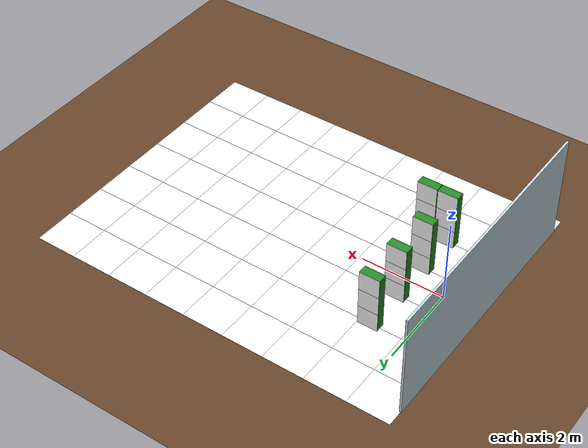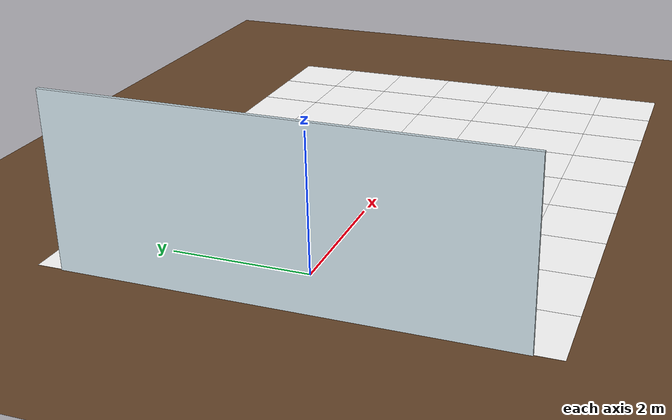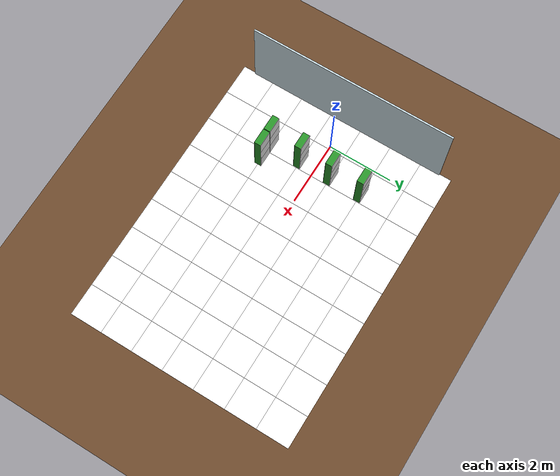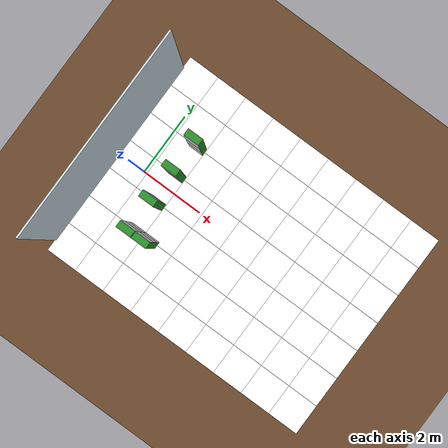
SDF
<sdf version="1.6">
 <world name="greenhouse_world">
  <model name="soil_ground">
   <static>true</static>
   <link name="link">
    <collision name="collision">
     <geometry><plane><normal>0 0 1</normal><size>100 100</size></plane></geometry>
     <surface><friction><ode><mu>100</mu><mu2>50</mu2></ode></friction></surface>
    </collision>
    <visual name="base">
     <cast_shadows>false</cast_shadows>
     <geometry><plane><normal>0 0 1</normal><size>100 100</size></plane></geometry>
     <material>
      <ambient>0.30 0.20 0.12 1</ambient>
      <diffuse>0.40 0.27 0.16 1</diffuse>
      <specular>0.0 0.0 0.0 1</specular>
     </material>
    </visual>
    <visual name="soil_tile_0_0">
     <cast_shadows>false</cast_shadows>
     <pose>-0.410 -3.000 0.003 0 0 0</pose>
     <geometry><box><size>1.0 1.0 0.002</size></box></geometry>
     <material>
      <diffuse>1 1 1 1</diffuse>
      <specular>0 0 0 1</specular>
      <pbr>
       <metal>
        <albedo_map>../media/materials/textures/soil_img.jpg</albedo_map>
        <metalness>0.0</metalness>
        <roughness>1.0</roughness>
       </metal>
      </pbr>
     </material>
    </visual>
    <visual name="soil_tile_0_1">
     <cast_shadows>false</cast_shadows>
     <pose>-0.410 -2.000 0.003 0 0 0</pose>
     <geometry><box><size>1.0 1.0 0.002</size></box></geometry>
     <material>
      <diffuse>1 1 1 1</diffuse>
      <specular>0 0 0 1</specular>
      <pbr>
       <metal>
        <albedo_map>../media/materials/textures/soil_img.jpg</albedo_map>
        <metalness>0.0</metalness>
        <roughness>1.0</roughness>
       </metal>
      </pbr>
     </material>
    </visual>
    <visual name="soil_tile_0_2">
     <cast_shadows>false</cast_shadows>
     <pose>-0.410 -1.000 0.003 0 0 0</pose>
     <geometry><box><size>1.0 1.0 0.002</size></box></geometry>
     <material>
      <diffuse>1 1 1 1</diffuse>
      <specular>0 0 0 1</specular>
      <pbr>
       <metal>
        <albedo_map>../media/materials/textures/soil_img.jpg</albedo_map>
        <metalness>0.0</metalness>
        <roughness>1.0</roughness>
       </metal>
      </pbr>
     </material>
    </visual>
    <visual name="soil_tile_0_3">
     <cast_shadows>false</cast_shadows>
     <pose>-0.410 0.000 0.003 0 0 0</pose>
     <geometry><box><size>1.0 1.0 0.002</size></box></geometry>
     <material>
      <diffuse>1 1 1 1</diffuse>
      <specular>0 0 0 1</specular>
      <pbr>
       <metal>
        <albedo_map>../media/materials/textures/soil_img.jpg</albedo_map>
        <metalness>0.0</metalness>
        <roughness>1.0</roughness>
       </metal>
      </pbr>
     </material>
    </visual>
    <visual name="soil_tile_0_4">
     <cast_shadows>false</cast_shadows>
     <pose>-0.410 1.000 0.003 0 0 0</pose>
     <geometry><box><size>1.0 1.0 0.002</size></box></geometry>
     <material>
      <diffuse>1 1 1 1</diffuse>
      <specular>0 0 0 1</specular>
      <pbr>
       <metal>
        <albedo_map>../media/materials/textures/soil_img.jpg</albedo_map>
        <metalness>0.0</metalness>
        <roughness>1.0</roughness>
       </metal>
      </pbr>
     </material>
    </visual>
    <visual name="soil_tile_0_5">
     <cast_shadows>false</cast_shadows>
     <pose>-0.410 2.000 0.003 0 0 0</pose>
     <geometry><box><size>1.0 1.0 0.002</size></box></geometry>
     <material>
      <diffuse>1 1 1 1</diffuse>
      <specular>0 0 0 1</specular>
      <pbr>
       <metal>
        <albedo_map>../media/materials/textures/soil_img.jpg</albedo_map>
        <metalness>0.0</metalness>
        <roughness>1.0</roughness>
       </metal>
      </pbr>
     </material>
    </visual>
    <visual name="soil_tile_0_6">
     <cast_shadows>false</cast_shadows>
     <pose>-0.410 3.000 0.003 0 0 0</pose>
     <geometry><box><size>1.0 1.0 0.002</size></box></geometry>
     <material>
      <diffuse>1 1 1 1</diffuse>
      <specular>0 0 0 1</specular>
      <pbr>
       <metal>
        <albedo_map>../media/materials/textures/soil_img.jpg</albedo_map>
        <metalness>0.0</metalness>
        <roughness>1.0</roughness>
       </metal>
      </pbr>
     </material>
    </visual>
    <visual name="soil_tile_1_0">
     <cast_shadows>false</cast_shadows>
     <pose>0.590 -3.000 0.003 0 0 0</pose>
     <geometry><box><size>1.0 1.0 0.002</size></box></geometry>
     <material>
      <diffuse>1 1 1 1</diffuse>
      <specular>0 0 0 1</specular>
      <pbr>
       <metal>
        <albedo_map>../media/materials/textures/soil_img.jpg</albedo_map>
        <metalness>0.0</metalness>
        <roughness>1.0</roughness>
       </metal>
      </pbr>
     </material>
    </visual>
    <visual name="soil_tile_1_1">
     <cast_shadows>false</cast_shadows>
     <pose>0.590 -2.000 0.003 0 0 0</pose>
     <geometry><box><size>1.0 1.0 0.002</size></box></geometry>
     <material>
      <diffuse>1 1 1 1</diffuse>
      <specular>0 0 0 1</specular>
      <pbr>
       <metal>
        <albedo_map>../media/materials/textures/soil_img.jpg</albedo_map>
        <metalness>0.0</metalness>
        <roughness>1.0</roughness>
       </metal>
      </pbr>
     </material>
    </visual>
    <visual name="soil_tile_1_2">
     <cast_shadows>false</cast_shadows>
     <pose>0.590 -1.000 0.003 0 0 0</pose>
     <geometry><box><size>1.0 1.0 0.002</size></box></geometry>
     <material>
      <diffuse>1 1 1 1</diffuse>
      <specular>0 0 0 1</specular>
      <pbr>
       <metal>
        <albedo_map>../media/materials/textures/soil_img.jpg</albedo_map>
        <metalness>0.0</metalness>
        <roughness>1.0</roughness>
       </metal>
      </pbr>
     </material>
    </visual>
    <visual name="soil_tile_1_3">
     <cast_shadows>false</cast_shadows>
     <pose>0.590 0.000 0.003 0 0 0</pose>
     <geometry><box><size>1.0 1.0 0.002</size></box></geometry>
     <material>
      <diffuse>1 1 1 1</diffuse>
      <specular>0 0 0 1</specular>
      <pbr>
       <metal>
        <albedo_map>../media/materials/textures/soil_img.jpg</albedo_map>
        <metalness>0.0</metalness>
        <roughness>1.0</roughness>
       </metal>
      </pbr>
     </material>
    </visual>
    <visual name="soil_tile_1_4">
     <cast_shadows>false</cast_shadows>
     <pose>0.590 1.000 0.003 0 0 0</pose>
     <geometry><box><size>1.0 1.0 0.002</size></box></geometry>
     <material>
      <diffuse>1 1 1 1</diffuse>
      <specular>0 0 0 1</specular>
      <pbr>
       <metal>
        <albedo_map>../media/materials/textures/soil_img.jpg</albedo_map>
        <metalness>0.0</metalness>
        <roughness>1.0</roughness>
       </metal>
      </pbr>
     </material>
    </visual>
    <visual name="soil_tile_1_5">
     <cast_shadows>false</cast_shadows>
     <pose>0.590 2.000 0.003 0 0 0</pose>
     <geometry><box><size>1.0 1.0 0.002</size></box></geometry>
     <material>
      <diffuse>1 1 1 1</diffuse>
      <specular>0 0 0 1</specular>
      <pbr>
       <metal>
        <albedo_map>../media/materials/textures/soil_img.jpg</albedo_map>
        <metalness>0.0</metalness>
        <roughness>1.0</roughness>
       </metal>
      </pbr>
     </material>
    </visual>
    <visual name="soil_tile_1_6">
     <cast_shadows>false</cast_shadows>
     <pose>0.590 3.000 0.003 0 0 0</pose>
     <geometry><box><size>1.0 1.0 0.002</size></box></geometry>
     <material>
      <diffuse>1 1 1 1</diffuse>
      <specular>0 0 0 1</specular>
      <pbr>
       <metal>
        <albedo_map>../media/materials/textures/soil_img.jpg</albedo_map>
        <metalness>0.0</metalness>
        <roughness>1.0</roughness>
       </metal>
      </pbr>
     </material>
    </visual>
    <visual name="soil_tile_2_0">
     <cast_shadows>false</cast_shadows>
     <pose>1.590 -3.000 0.003 0 0 0</pose>
     <geometry><box><size>1.0 1.0 0.002</size></box></geometry>
     <material>
      <diffuse>1 1 1 1</diffuse>
      <specular>0 0 0 1</specular>
      <pbr>
       <metal>
        <albedo_map>../media/materials/textures/soil_img.jpg</albedo_map>
        <metalness>0.0</metalness>
        <roughness>1.0</roughness>
       </metal>
      </pbr>
     </material>
    </visual>
    <visual name="soil_tile_2_1">
     <cast_shadows>false</cast_shadows>
     <pose>1.590 -2.000 0.003 0 0 0</pose>
     <geometry><box><size>1.0 1.0 0.002</size></box></geometry>
     <material>
      <diffuse>1 1 1 1</diffuse>
      <specular>0 0 0 1</specular>
      <pbr>
       <metal>
        <albedo_map>../media/materials/textures/soil_img.jpg</albedo_map>
        <metalness>0.0</metalness>
        <roughness>1.0</roughness>
       </metal>
      </pbr>
     </material>
    </visual>
    <visual name="soil_tile_2_2">
     <cast_shadows>false</cast_shadows>
     <pose>1.590 -1.000 0.003 0 0 0</pose>
     <geometry><box><size>1.0 1.0 0.002</size></box></geometry>
     <material>
      <diffuse>1 1 1 1</diffuse>
      <specular>0 0 0 1</specular>
      <pbr>
       <metal>
        <albedo_map>../media/materials/textures/soil_img.jpg</albedo_map>
        <metalness>0.0</metalness>
        <roughness>1.0</roughness>
       </metal>
      </pbr>
     </material>
    </visual>
    <visual name="soil_tile_2_3">
     <cast_shadows>false</cast_shadows>
     <pose>1.590 0.000 0.003 0 0 0</pose>
     <geometry><box><size>1.0 1.0 0.002</size></box></geometry>
     <material>
      <diffuse>1 1 1 1</diffuse>
      <specular>0 0 0 1</specular>
      <pbr>
       <metal>
        <albedo_map>../media/materials/textures/soil_img.jpg</albedo_map>
        <metalness>0.0</metalness>
        <roughness>1.0</roughness>
       </metal>
      </pbr>
     </material>
    </visual>
    <visual name="soil_tile_2_4">
     <cast_shadows>false</cast_shadows>
     <pose>1.590 1.000 0.003 0 0 0</pose>
     <geometry><box><size>1.0 1.0 0.002</size></box></geometry>
     <material>
      <diffuse>1 1 1 1</diffuse>
      <specular>0 0 0 1</specular>
      <pbr>
       <metal>
        <albedo_map>../media/materials/textures/soil_img.jpg</albedo_map>
        <metalness>0.0</metalness>
        <roughness>1.0</roughness>
       </metal>
      </pbr>
     </material>
    </visual>
    <visual name="soil_tile_2_5">
     <cast_shadows>false</cast_shadows>
     <pose>1.590 2.000 0.003 0 0 0</pose>
     <geometry><box><size>1.0 1.0 0.002</size></box></geometry>
     <material>
      <diffuse>1 1 1 1</diffuse>
      <specular>0 0 0 1</specular>
      <pbr>
       <metal>
        <albedo_map>../media/materials/textures/soil_img.jpg</albedo_map>
        <metalness>0.0</metalness>
        <roughness>1.0</roughness>
       </metal>
      </pbr>
     </material>
    </visual>
    <visual name="soil_tile_2_6">
     <cast_shadows>false</cast_shadows>
     <pose>1.590 3.000 0.003 0 0 0</pose>
     <geometry><box><size>1.0 1.0 0.002</size></box></geometry>
     <material>
      <diffuse>1 1 1 1</diffuse>
      <specular>0 0 0 1</specular>
      <pbr>
       <metal>
        <albedo_map>../media/materials/textures/soil_img.jpg</albedo_map>
        <metalness>0.0</metalness>
        <roughness>1.0</roughness>
       </metal>
      </pbr>
     </material>
    </visual>
    <visual name="soil_tile_3_0">
     <cast_shadows>false</cast_shadows>
     <pose>2.590 -3.000 0.003 0 0 0</pose>
     <geometry><box><size>1.0 1.0 0.002</size></box></geometry>
     <material>
      <diffuse>1 1 1 1</diffuse>
      <specular>0 0 0 1</specular>
      <pbr>
       <metal>
        <albedo_map>../media/materials/textures/soil_img.jpg</albedo_map>
        <metalness>0.0</metalness>
        <roughness>1.0</roughness>
       </metal>
      </pbr>
     </material>
    </visual>
    <visual name="soil_tile_3_1">
     <cast_shadows>false</cast_shadows>
     <pose>2.590 -2.000 0.003 0 0 0</pose>
     <geometry><box><size>1.0 1.0 0.002</size></box></geometry>
     <material>
      <diffuse>1 1 1 1</diffuse>
      <specular>0 0 0 1</specular>
      <pbr>
       <metal>
        <albedo_map>../media/materials/textures/soil_img.jpg</albedo_map>
        <metalness>0.0</metalness>
        <roughness>1.0</roughness>
       </metal>
      </pbr>
     </material>
    </visual>
    <visual name="soil_tile_3_2">
     <cast_shadows>false</cast_shadows>
     <pose>2.590 -1.000 0.003 0 0 0</pose>
     <geometry><box><size>1.0 1.0 0.002</size></box></geometry>
     <material>
      <diffuse>1 1 1 1</diffuse>
      <specular>0 0 0 1</specular>
      <pbr>
       <metal>
        <albedo_map>../media/materials/textures/soil_img.jpg</albedo_map>
        <metalness>0.0</metalness>
        <roughness>1.0</roughness>
       </metal>
      </pbr>
     </material>
    </visual>
    <visual name="soil_tile_3_3">
     <cast_shadows>false</cast_shadows>
     <pose>2.590 0.000 0.003 0 0 0</pose>
     <geometry><box><size>1.0 1.0 0.002</size></box></geometry>
     <material>
      <diffuse>1 1 1 1</diffuse>
      <specular>0 0 0 1</specular>
      <pbr>
       <metal>
        <albedo_map>../media/materials/textures/soil_img.jpg</albedo_map>
        <metalness>0.0</metalness>
        <roughness>1.0</roughness>
       </metal>
      </pbr>
     </material>
    </visual>
    <visual name="soil_tile_3_4">
     <cast_shadows>false</cast_shadows>
     <pose>2.590 1.000 0.003 0 0 0</pose>
     <geometry><box><size>1.0 1.0 0.002</size></box></geometry>
     <material>
      <diffuse>1 1 1 1</diffuse>
      <specular>0 0 0 1</specular>
      <pbr>
       <metal>
        <albedo_map>../media/materials/textures/soil_img.jpg</albedo_map>
        <metalness>0.0</metalness>
        <roughness>1.0</roughness>
       </metal>
      </pbr>
     </material>
    </visual>
    <visual name="soil_tile_3_5">
     <cast_shadows>false</cast_shadows>
     <pose>2.590 2.000 0.003 0 0 0</pose>
     <geometry><box><size>1.0 1.0 0.002</size></box></geometry>
     <material>
      <diffuse>1 1 1 1</diffuse>
      <specular>0 0 0 1</specular>
      <pbr>
       <metal>
        <albedo_map>../media/materials/textures/soil_img.jpg</albedo_map>
        <metalness>0.0</metalness>
        <roughness>1.0</roughness>
       </metal>
      </pbr>
     </material>
    </visual>
    <visual name="soil_tile_3_6">
     <cast_shadows>false</cast_shadows>
     <pose>2.590 3.000 0.003 0 0 0</pose>
     <geometry><box><size>1.0 1.0 0.002</size></box></geometry>
     <material>
      <diffuse>1 1 1 1</diffuse>
      <specular>0 0 0 1</specular>
      <pbr>
       <metal>
        <albedo_map>../media/materials/textures/soil_img.jpg</albedo_map>
        <metalness>0.0</metalness>
        <roughness>1.0</roughness>
       </metal>
      </pbr>
     </material>
    </visual>
    <visual name="soil_tile_4_0">
     <cast_shadows>false</cast_shadows>
     <pose>3.590 -3.000 0.003 0 0 0</pose>
     <geometry><box><size>1.0 1.0 0.002</size></box></geometry>
     <material>
      <diffuse>1 1 1 1</diffuse>
      <specular>0 0 0 1</specular>
      <pbr>
       <metal>
        <albedo_map>../media/materials/textures/soil_img.jpg</albedo_map>
        <metalness>0.0</metalness>
        <roughness>1.0</roughness>
       </metal>
      </pbr>
     </material>
    </visual>
    <visual name="soil_tile_4_1">
     <cast_shadows>false</cast_shadows>
     <pose>3.590 -2.000 0.003 0 0 0</pose>
     <geometry><box><size>1.0 1.0 0.002</size></box></geometry>
     <material>
      <diffuse>1 1 1 1</diffuse>
      <specular>0 0 0 1</specular>
      <pbr>
       <metal>
        <albedo_map>../media/materials/textures/soil_img.jpg</albedo_map>
        <metalness>0.0</metalness>
        <roughness>1.0</roughness>
       </metal>
      </pbr>
     </material>
    </visual>
    <visual name="soil_tile_4_2">
     <cast_shadows>false</cast_shadows>
     <pose>3.590 -1.000 0.003 0 0 0</pose>
     <geometry><box><size>1.0 1.0 0.002</size></box></geometry>
     <material>
      <diffuse>1 1 1 1</diffuse>
      <specular>0 0 0 1</specular>
      <pbr>
       <metal>
        <albedo_map>../media/materials/textures/soil_img.jpg</albedo_map>
        <metalness>0.0</metalness>
        <roughness>1.0</roughness>
       </metal>
      </pbr>
     </material>
    </visual>
    <visual name="soil_tile_4_3">
     <cast_shadows>false</cast_shadows>
     <pose>3.590 0.000 0.003 0 0 0</pose>
     <geometry><box><size>1.0 1.0 0.002</size></box></geometry>
     <material>
      <diffuse>1 1 1 1</diffuse>
      <specular>0 0 0 1</specular>
      <pbr>
       <metal>
        <albedo_map>../media/materials/textures/soil_img.jpg</albedo_map>
        <metalness>0.0</metalness>
        <roughness>1.0</roughness>
       </metal>
      </pbr>
     </material>
    </visual>
    <visual name="soil_tile_4_4">
     <cast_shadows>false</cast_shadows>
     <pose>3.590 1.000 0.003 0 0 0</pose>
     <geometry><box><size>1.0 1.0 0.002</size></box></geometry>
     <material>
      <diffuse>1 1 1 1</diffuse>
      <specular>0 0 0 1</specular>
      <pbr>
       <metal>
        <albedo_map>../media/materials/textures/soil_img.jpg</albedo_map>
        <metalness>0.0</metalness>
        <roughness>1.0</roughness>
       </metal>
      </pbr>
     </material>
    </visual>
    <visual name="soil_tile_4_5">
     <cast_shadows>false</cast_shadows>
     <pose>3.590 2.000 0.003 0 0 0</pose>
     <geometry><box><size>1.0 1.0 0.002</size></box></geometry>
     <material>
      <diffuse>1 1 1 1</diffuse>
      <specular>0 0 0 1</specular>
      <pbr>
       <metal>
        <albedo_map>../media/materials/textures/soil_img.jpg</albedo_map>
        <metalness>0.0</metalness>
        <roughness>1.0</roughness>
       </metal>
      </pbr>
     </material>
    </visual>
    <visual name="soil_tile_4_6">
     <cast_shadows>false</cast_shadows>
     <pose>3.590 3.000 0.003 0 0 0</pose>
     <geometry><box><size>1.0 1.0 0.002</size></box></geometry>
     <material>
      <diffuse>1 1 1 1</diffuse>
      <specular>0 0 0 1</specular>
      <pbr>
       <metal>
        <albedo_map>../media/materials/textures/soil_img.jpg</albedo_map>
        <metalness>0.0</metalness>
        <roughness>1.0</roughness>
       </metal>
      </pbr>
     </material>
    </visual>
    <visual name="soil_tile_5_0">
     <cast_shadows>false</cast_shadows>
     <pose>4.590 -3.000 0.003 0 0 0</pose>
     <geometry><box><size>1.0 1.0 0.002</size></box></geometry>
     <material>
      <diffuse>1 1 1 1</diffuse>
      <specular>0 0 0 1</specular>
      <pbr>
       <metal>
        <albedo_map>../media/materials/textures/soil_img.jpg</albedo_map>
        <metalness>0.0</metalness>
        <roughness>1.0</roughness>
       </metal>
      </pbr>
     </material>
    </visual>
    <visual name="soil_tile_5_1">
     <cast_shadows>false</cast_shadows>
     <pose>4.590 -2.000 0.003 0 0 0</pose>
     <geometry><box><size>1.0 1.0 0.002</size></box></geometry>
     <material>
      <diffuse>1 1 1 1</diffuse>
      <specular>0 0 0 1</specular>
      <pbr>
       <metal>
        <albedo_map>../media/materials/textures/soil_img.jpg</albedo_map>
        <metalness>0.0</metalness>
        <roughness>1.0</roughness>
       </metal>
      </pbr>
     </material>
    </visual>
    <visual name="soil_tile_5_2">
     <cast_shadows>false</cast_shadows>
     <pose>4.590 -1.000 0.003 0 0 0</pose>
     <geometry><box><size>1.0 1.0 0.002</size></box></geometry>
     <material>
      <diffuse>1 1 1 1</diffuse>
      <specular>0 0 0 1</specular>
      <pbr>
       <metal>
        <albedo_map>../media/materials/textures/soil_img.jpg</albedo_map>
        <metalness>0.0</metalness>
        <roughness>1.0</roughness>
       </metal>
      </pbr>
     </material>
    </visual>
    <visual name="soil_tile_5_3">
     <cast_shadows>false</cast_shadows>
     <pose>4.590 0.000 0.003 0 0 0</pose>
     <geometry><box><size>1.0 1.0 0.002</size></box></geometry>
     <material>
      <diffuse>1 1 1 1</diffuse>
      <specular>0 0 0 1</specular>
      <pbr>
       <metal>
        <albedo_map>../media/materials/textures/soil_img.jpg</albedo_map>
        <metalness>0.0</metalness>
        <roughness>1.0</roughness>
       </metal>
      </pbr>
     </material>
    </visual>
    <visual name="soil_tile_5_4">
     <cast_shadows>false</cast_shadows>
     <pose>4.590 1.000 0.003 0 0 0</pose>
     <geometry><box><size>1.0 1.0 0.002</size></box></geometry>
     <material>
      <diffuse>1 1 1 1</diffuse>
      <specular>0 0 0 1</specular>
      <pbr>
       <metal>
        <albedo_map>../media/materials/textures/soil_img.jpg</albedo_map>
        <metalness>0.0</metalness>
        <roughness>1.0</roughness>
       </metal>
      </pbr>
     </material>
    </visual>
    <visual name="soil_tile_5_5">
     <cast_shadows>false</cast_shadows>
     <pose>4.590 2.000 0.003 0 0 0</pose>
     <geometry><box><size>1.0 1.0 0.002</size></box></geometry>
     <material>
      <diffuse>1 1 1 1</diffuse>
      <specular>0 0 0 1</specular>
      <pbr>
       <metal>
        <albedo_map>../media/materials/textures/soil_img.jpg</albedo_map>
        <metalness>0.0</metalness>
        <roughness>1.0</roughness>
       </metal>
      </pbr>
     </material>
    </visual>
    <visual name="soil_tile_5_6">
     <cast_shadows>false</cast_shadows>
     <pose>4.590 3.000 0.003 0 0 0</pose>
     <geometry><box><size>1.0 1.0 0.002</size></box></geometry>
     <material>
      <diffuse>1 1 1 1</diffuse>
      <specular>0 0 0 1</specular>
      <pbr>
       <metal>
        <albedo_map>../media/materials/textures/soil_img.jpg</albedo_map>
        <metalness>0.0</metalness>
        <roughness>1.0</roughness>
       </metal>
      </pbr>
     </material>
    </visual>
    <visual name="soil_tile_6_0">
     <cast_shadows>false</cast_shadows>
     <pose>5.590 -3.000 0.003 0 0 0</pose>
     <geometry><box><size>1.0 1.0 0.002</size></box></geometry>
     <material>
      <diffuse>1 1 1 1</diffuse>
      <specular>0 0 0 1</specular>
      <pbr>
       <metal>
        <albedo_map>../media/materials/textures/soil_img.jpg</albedo_map>
        <metalness>0.0</metalness>
        <roughness>1.0</roughness>
       </metal>
      </pbr>
     </material>
    </visual>
    <visual name="soil_tile_6_1">
     <cast_shadows>false</cast_shadows>
     <pose>5.590 -2.000 0.003 0 0 0</pose>
     <geometry><box><size>1.0 1.0 0.002</size></box></geometry>
     <material>
      <diffuse>1 1 1 1</diffuse>
      <specular>0 0 0 1</specular>
      <pbr>
       <metal>
        <albedo_map>../media/materials/textures/soil_img.jpg</albedo_map>
        <metalness>0.0</metalness>
        <roughness>1.0</roughness>
       </metal>
      </pbr>
     </material>
    </visual>
    <visual name="soil_tile_6_2">
     <cast_shadows>false</cast_shadows>
     <pose>5.590 -1.000 0.003 0 0 0</pose>
     <geometry><box><size>1.0 1.0 0.002</size></box></geometry>
     <material>
      <diffuse>1 1 1 1</diffuse>
      <specular>0 0 0 1</specular>
      <pbr>
       <metal>
        <albedo_map>../media/materials/textures/soil_img.jpg</albedo_map>
        <metalness>0.0</metalness>
        <roughness>1.0</roughness>
       </metal>
      </pbr>
     </material>
    </visual>
    <visual name="soil_tile_6_3">
     <cast_shadows>false</cast_shadows>
     <pose>5.590 0.000 0.003 0 0 0</pose>
     <geometry><box><size>1.0 1.0 0.002</size></box></geometry>
     <material>
      <diffuse>1 1 1 1</diffuse>
      <specular>0 0 0 1</specular>
      <pbr>
       <metal>
        <albedo_map>../media/materials/textures/soil_img.jpg</albedo_map>
        <metalness>0.0</metalness>
        <roughness>1.0</roughness>
       </metal>
      </pbr>
     </material>
    </visual>
    <visual name="soil_tile_6_4">
     <cast_shadows>false</cast_shadows>
     <pose>5.590 1.000 0.003 0 0 0</pose>
     <geometry><box><size>1.0 1.0 0.002</size></box></geometry>
     <material>
      <diffuse>1 1 1 1</diffuse>
      <specular>0 0 0 1</specular>
      <pbr>
       <metal>
        <albedo_map>../media/materials/textures/soil_img.jpg</albedo_map>
        <metalness>0.0</metalness>
        <roughness>1.0</roughness>
       </metal>
      </pbr>
     </material>
    </visual>
    <visual name="soil_tile_6_5">
     <cast_shadows>false</cast_shadows>
     <pose>5.590 2.000 0.003 0 0 0</pose>
     <geometry><box><size>1.0 1.0 0.002</size></box></geometry>
     <material>
      <diffuse>1 1 1 1</diffuse>
      <specular>0 0 0 1</specular>
      <pbr>
       <metal>
        <albedo_map>../media/materials/textures/soil_img.jpg</albedo_map>
        <metalness>0.0</metalness>
        <roughness>1.0</roughness>
       </metal>
      </pbr>
     </material>
    </visual>
    <visual name="soil_tile_6_6">
     <cast_shadows>false</cast_shadows>
     <pose>5.590 3.000 0.003 0 0 0</pose>
     <geometry><box><size>1.0 1.0 0.002</size></box></geometry>
     <material>
      <diffuse>1 1 1 1</diffuse>
      <specular>0 0 0 1</specular>
      <pbr>
       <metal>
        <albedo_map>../media/materials/textures/soil_img.jpg</albedo_map>
        <metalness>0.0</metalness>
        <roughness>1.0</roughness>
       </metal>
      </pbr>
     </material>
    </visual>
    <visual name="soil_tile_7_0">
     <cast_shadows>false</cast_shadows>
     <pose>6.590 -3.000 0.003 0 0 0</pose>
     <geometry><box><size>1.0 1.0 0.002</size></box></geometry>
     <material>
      <diffuse>1 1 1 1</diffuse>
      <specular>0 0 0 1</specular>
      <pbr>
       <metal>
        <albedo_map>../media/materials/textures/soil_img.jpg</albedo_map>
        <metalness>0.0</metalness>
        <roughness>1.0</roughness>
       </metal>
      </pbr>
     </material>
    </visual>
    <visual name="soil_tile_7_1">
     <cast_shadows>false</cast_shadows>
     <pose>6.590 -2.000 0.003 0 0 0</pose>
     <geometry><box><size>1.0 1.0 0.002</size></box></geometry>
     <material>
      <diffuse>1 1 1 1</diffuse>
      <specular>0 0 0 1</specular>
      <pbr>
       <metal>
        <albedo_map>../media/materials/textures/soil_img.jpg</albedo_map>
        <metalness>0.0</metalness>
        <roughness>1.0</roughness>
       </metal>
      </pbr>
     </material>
    </visual>
    <visual name="soil_tile_7_2">
     <cast_shadows>false</cast_shadows>
     <pose>6.590 -1.000 0.003 0 0 0</pose>
     <geometry><box><size>1.0 1.0 0.002</size></box></geometry>
     <material>
      <diffuse>1 1 1 1</diffuse>
      <specular>0 0 0 1</specular>
      <pbr>
       <metal>
        <albedo_map>../media/materials/textures/soil_img.jpg</albedo_map>
        <metalness>0.0</metalness>
        <roughness>1.0</roughness>
       </metal>
      </pbr>
     </material>
    </visual>
    <visual name="soil_tile_7_3">
     <cast_shadows>false</cast_shadows>
     <pose>6.590 0.000 0.003 0 0 0</pose>
     <geometry><box><size>1.0 1.0 0.002</size></box></geometry>
     <material>
      <diffuse>1 1 1 1</diffuse>
      <specular>0 0 0 1</specular>
      <pbr>
       <metal>
        <albedo_map>../media/materials/textures/soil_img.jpg</albedo_map>
        <metalness>0.0</metalness>
        <roughness>1.0</roughness>
       </metal>
      </pbr>
     </material>
    </visual>
    <visual name="soil_tile_7_4">
     <cast_shadows>false</cast_shadows>
     <pose>6.590 1.000 0.003 0 0 0</pose>
     <geometry><box><size>1.0 1.0 0.002</size></box></geometry>
     <material>
      <diffuse>1 1 1 1</diffuse>
      <specular>0 0 0 1</specular>
      <pbr>
       <metal>
        <albedo_map>../media/materials/textures/soil_img.jpg</albedo_map>
        <metalness>0.0</metalness>
        <roughness>1.0</roughness>
       </metal>
      </pbr>
     </material>
    </visual>
    <visual name="soil_tile_7_5">
     <cast_shadows>false</cast_shadows>
     <pose>6.590 2.000 0.003 0 0 0</pose>
     <geometry><box><size>1.0 1.0 0.002</size></box></geometry>
     <material>
      <diffuse>1 1 1 1</diffuse>
      <specular>0 0 0 1</specular>
      <pbr>
       <metal>
        <albedo_map>../media/materials/textures/soil_img.jpg</albedo_map>
        <metalness>0.0</metalness>
        <roughness>1.0</roughness>
       </metal>
      </pbr>
     </material>
    </visual>
    <visual name="soil_tile_7_6">
     <cast_shadows>false</cast_shadows>
     <pose>6.590 3.000 0.003 0 0 0</pose>
     <geometry><box><size>1.0 1.0 0.002</size></box></geometry>
     <material>
      <diffuse>1 1 1 1</diffuse>
      <specular>0 0 0 1</specular>
      <pbr>
       <metal>
        <albedo_map>../media/materials/textures/soil_img.jpg</albedo_map>
        <metalness>0.0</metalness>
        <roughness>1.0</roughness>
       </metal>
      </pbr>
     </material>
    </visual>
    <visual name="soil_tile_8_0">
     <cast_shadows>false</cast_shadows>
     <pose>7.590 -3.000 0.003 0 0 0</pose>
     <geometry><box><size>1.0 1.0 0.002</size></box></geometry>
     <material>
      <diffuse>1 1 1 1</diffuse>
      <specular>0 0 0 1</specular>
      <pbr>
       <metal>
        <albedo_map>../media/materials/textures/soil_img.jpg</albedo_map>
        <metalness>0.0</metalness>
        <roughness>1.0</roughness>
       </metal>
      </pbr>
     </material>
    </visual>
    <visual name="soil_tile_8_1">
     <cast_shadows>false</cast_shadows>
     <pose>7.590 -2.000 0.003 0 0 0</pose>
     <geometry><box><size>1.0 1.0 0.002</size></box></geometry>
     <material>
      <diffuse>1 1 1 1</diffuse>
      <specular>0 0 0 1</specular>
      <pbr>
       <metal>
        <albedo_map>../media/materials/textures/soil_img.jpg</albedo_map>
        <metalness>0.0</metalness>
        <roughness>1.0</roughness>
       </metal>
      </pbr>
     </material>
    </visual>
    <visual name="soil_tile_8_2">
     <cast_shadows>false</cast_shadows>
     <pose>7.590 -1.000 0.003 0 0 0</pose>
     <geometry><box><size>1.0 1.0 0.002</size></box></geometry>
     <material>
      <diffuse>1 1 1 1</diffuse>
      <specular>0 0 0 1</specular>
      <pbr>
       <metal>
        <albedo_map>../media/materials/textures/soil_img.jpg</albedo_map>
        <metalness>0.0</metalness>
        <roughness>1.0</roughness>
       </metal>
      </pbr>
     </material>
    </visual>
    <visual name="soil_tile_8_3">
     <cast_shadows>false</cast_shadows>
     <pose>7.590 0.000 0.003 0 0 0</pose>
     <geometry><box><size>1.0 1.0 0.002</size></box></geometry>
     <material>
      <diffuse>1 1 1 1</diffuse>
      <specular>0 0 0 1</specular>
      <pbr>
       <metal>
        <albedo_map>../media/materials/textures/soil_img.jpg</albedo_map>
        <metalness>0.0</metalness>
        <roughness>1.0</roughness>
       </metal>
      </pbr>
     </material>
    </visual>
    <visual name="soil_tile_8_4">
     <cast_shadows>false</cast_shadows>
     <pose>7.590 1.000 0.003 0 0 0</pose>
     <geometry><box><size>1.0 1.0 0.002</size></box></geometry>
     <material>
      <diffuse>1 1 1 1</diffuse>
      <specular>0 0 0 1</specular>
      <pbr>
       <metal>
        <albedo_map>../media/materials/textures/soil_img.jpg</albedo_map>
        <metalness>0.0</metalness>
        <roughness>1.0</roughness>
       </metal>
      </pbr>
     </material>
    </visual>
    <visual name="soil_tile_8_5">
     <cast_shadows>false</cast_shadows>
     <pose>7.590 2.000 0.003 0 0 0</pose>
     <geometry><box><size>1.0 1.0 0.002</size></box></geometry>
     <material>
      <diffuse>1 1 1 1</diffuse>
      <specular>0 0 0 1</specular>
      <pbr>
       <metal>
        <albedo_map>../media/materials/textures/soil_img.jpg</albedo_map>
        <metalness>0.0</metalness>
        <roughness>1.0</roughness>
       </metal>
      </pbr>
     </material>
    </visual>
    <visual name="soil_tile_8_6">
     <cast_shadows>false</cast_shadows>
     <pose>7.590 3.000 0.003 0 0 0</pose>
     <geometry><box><size>1.0 1.0 0.002</size></box></geometry>
     <material>
      <diffuse>1 1 1 1</diffuse>
      <specular>0 0 0 1</specular>
      <pbr>
       <metal>
        <albedo_map>../media/materials/textures/soil_img.jpg</albedo_map>
        <metalness>0.0</metalness>
        <roughness>1.0</roughness>
       </metal>
      </pbr>
     </material>
    </visual>
   </link>
  </model>
  <model name="tomato_r0_p0">
   <static>true</static>
   <pose>0.840 -1.500 0 0 0 0</pose>
   <link name="link">
    <collision name="foliage_col">
     <pose>0 0 0.700 0 0 0</pose>
     <geometry><box><size>0.480 0.200 1.400</size></box></geometry>
    </collision>
    <visual name="foliage_core">
     <pose>0 0 0.700 0 0 0</pose>
     <geometry><box><size>0.480 0.200 1.400</size></box></geometry>
     <material><ambient>0.1 0.4 0.1 1</ambient><diffuse>0.15 0.55 0.15 1</diffuse></material>
    </visual>
    <visual name="foliage_panel_py_0">
     <pose>0 0.105 0.233 0 0 0</pose>
     <geometry><box><size>0.480 0.010 0.467</size></box></geometry>
     <material>
      <diffuse>1 1 1 1</diffuse>
      <specular>0 0 0 1</specular>
      <pbr>
       <metal>
        <albedo_map>../media/materials/textures/img13.jpg</albedo_map>
        <metalness>0.0</metalness>
        <roughness>1.0</roughness>
       </metal>
      </pbr>
     </material>
    </visual>
    <visual name="foliage_panel_py_1">
     <pose>0 0.105 0.700 0 0 0</pose>
     <geometry><box><size>0.480 0.010 0.467</size></box></geometry>
     <material>
      <diffuse>1 1 1 1</diffuse>
      <specular>0 0 0 1</specular>
      <pbr>
       <metal>
        <albedo_map>../media/materials/textures/img14.jpg</albedo_map>
        <metalness>0.0</metalness>
        <roughness>1.0</roughness>
       </metal>
      </pbr>
     </material>
    </visual>
    <visual name="foliage_panel_py_2">
     <pose>0 0.105 1.167 0 0 0</pose>
     <geometry><box><size>0.480 0.010 0.467</size></box></geometry>
     <material>
      <diffuse>1 1 1 1</diffuse>
      <specular>0 0 0 1</specular>
      <pbr>
       <metal>
        <albedo_map>../media/materials/textures/img02.jpg</albedo_map>
        <metalness>0.0</metalness>
        <roughness>1.0</roughness>
       </metal>
      </pbr>
     </material>
    </visual>
    <visual name="foliage_panel_ny_0">
     <pose>0 -0.105 0.233 0 3.14159 0</pose>
     <geometry><box><size>0.480 0.010 0.467</size></box></geometry>
     <material>
      <diffuse>1 1 1 1</diffuse>
      <specular>0 0 0 1</specular>
      <pbr>
       <metal>
        <albedo_map>../media/materials/textures/img09.jpg</albedo_map>
        <metalness>0.0</metalness>
        <roughness>1.0</roughness>
       </metal>
      </pbr>
     </material>
    </visual>
    <visual name="foliage_panel_ny_1">
     <pose>0 -0.105 0.700 0 3.14159 0</pose>
     <geometry><box><size>0.480 0.010 0.467</size></box></geometry>
     <material>
      <diffuse>1 1 1 1</diffuse>
      <specular>0 0 0 1</specular>
      <pbr>
       <metal>
        <albedo_map>../media/materials/textures/img17.jpg</albedo_map>
        <metalness>0.0</metalness>
        <roughness>1.0</roughness>
       </metal>
      </pbr>
     </material>
    </visual>
    <visual name="foliage_panel_ny_2">
     <pose>0 -0.105 1.167 0 3.14159 0</pose>
     <geometry><box><size>0.480 0.010 0.467</size></box></geometry>
     <material>
      <diffuse>1 1 1 1</diffuse>
      <specular>0 0 0 1</specular>
      <pbr>
       <metal>
        <albedo_map>../media/materials/textures/img16.jpg</albedo_map>
        <metalness>0.0</metalness>
        <roughness>1.0</roughness>
       </metal>
      </pbr>
     </material>
    </visual>
   </link>
  </model>
  <model name="tomato_r0_p1">
   <static>true</static>
   <pose>1.340 -1.500 0 0 0 0</pose>
   <link name="link">
    <collision name="foliage_col">
     <pose>0 0 0.700 0 0 0</pose>
     <geometry><box><size>0.480 0.200 1.400</size></box></geometry>
    </collision>
    <visual name="foliage_core">
     <pose>0 0 0.700 0 0 0</pose>
     <geometry><box><size>0.480 0.200 1.400</size></box></geometry>
     <material><ambient>0.1 0.4 0.1 1</ambient><diffuse>0.15 0.55 0.15 1</diffuse></material>
    </visual>
    <visual name="foliage_panel_py_0">
     <pose>0 0.105 0.233 0 0 0</pose>
     <geometry><box><size>0.480 0.010 0.467</size></box></geometry>
     <material>
      <diffuse>1 1 1 1</diffuse>
      <specular>0 0 0 1</specular>
      <pbr>
       <metal>
        <albedo_map>../media/materials/textures/img13.jpg</albedo_map>
        <metalness>0.0</metalness>
        <roughness>1.0</roughness>
       </metal>
      </pbr>
     </material>
    </visual>
    <visual name="foliage_panel_py_1">
     <pose>0 0.105 0.700 0 0 0</pose>
     <geometry><box><size>0.480 0.010 0.467</size></box></geometry>
     <material>
      <diffuse>1 1 1 1</diffuse>
      <specular>0 0 0 1</specular>
      <pbr>
       <metal>
        <albedo_map>../media/materials/textures/img10.jpg</albedo_map>
        <metalness>0.0</metalness>
        <roughness>1.0</roughness>
       </metal>
      </pbr>
     </material>
    </visual>
    <visual name="foliage_panel_py_2">
     <pose>0 0.105 1.167 0 0 0</pose>
     <geometry><box><size>0.480 0.010 0.467</size></box></geometry>
     <material>
      <diffuse>1 1 1 1</diffuse>
      <specular>0 0 0 1</specular>
      <pbr>
       <metal>
        <albedo_map>../media/materials/textures/img16.jpg</albedo_map>
        <metalness>0.0</metalness>
        <roughness>1.0</roughness>
       </metal>
      </pbr>
     </material>
    </visual>
    <visual name="foliage_panel_ny_0">
     <pose>0 -0.105 0.233 0 3.14159 0</pose>
     <geometry><box><size>0.480 0.010 0.467</size></box></geometry>
     <material>
      <diffuse>1 1 1 1</diffuse>
      <specular>0 0 0 1</specular>
      <pbr>
       <metal>
        <albedo_map>../media/materials/textures/img12.jpg</albedo_map>
        <metalness>0.0</metalness>
        <roughness>1.0</roughness>
       </metal>
      </pbr>
     </material>
    </visual>
    <visual name="foliage_panel_ny_1">
     <pose>0 -0.105 0.700 0 3.14159 0</pose>
     <geometry><box><size>0.480 0.010 0.467</size></box></geometry>
     <material>
      <diffuse>1 1 1 1</diffuse>
      <specular>0 0 0 1</specular>
      <pbr>
       <metal>
        <albedo_map>../media/materials/textures/img19.jpg</albedo_map>
        <metalness>0.0</metalness>
        <roughness>1.0</roughness>
       </metal>
      </pbr>
     </material>
    </visual>
    <visual name="foliage_panel_ny_2">
     <pose>0 -0.105 1.167 0 3.14159 0</pose>
     <geometry><box><size>0.480 0.010 0.467</size></box></geometry>
     <material>
      <diffuse>1 1 1 1</diffuse>
      <specular>0 0 0 1</specular>
      <pbr>
       <metal>
        <albedo_map>../media/materials/textures/img07.jpg</albedo_map>
        <metalness>0.0</metalness>
        <roughness>1.0</roughness>
       </metal>
      </pbr>
     </material>
    </visual>
   </link>
  </model>
  <model name="tomato_r1_p0">
   <static>true</static>
   <pose>0.840 -0.500 0 0 0 0</pose>
   <link name="link">
    <collision name="foliage_col">
     <pose>0 0 0.700 0 0 0</pose>
     <geometry><box><size>0.480 0.200 1.400</size></box></geometry>
    </collision>
    <visual name="foliage_core">
     <pose>0 0 0.700 0 0 0</pose>
     <geometry><box><size>0.480 0.200 1.400</size></box></geometry>
     <material><ambient>0.1 0.4 0.1 1</ambient><diffuse>0.15 0.55 0.15 1</diffuse></material>
    </visual>
    <visual name="foliage_panel_py_0">
     <pose>0 0.105 0.233 0 0 0</pose>
     <geometry><box><size>0.480 0.010 0.467</size></box></geometry>
     <material>
      <diffuse>1 1 1 1</diffuse>
      <specular>0 0 0 1</specular>
      <pbr>
       <metal>
        <albedo_map>../media/materials/textures/img16.jpg</albedo_map>
        <metalness>0.0</metalness>
        <roughness>1.0</roughness>
       </metal>
      </pbr>
     </material>
    </visual>
    <visual name="foliage_panel_py_1">
     <pose>0 0.105 0.700 0 0 0</pose>
     <geometry><box><size>0.480 0.010 0.467</size></box></geometry>
     <material>
      <diffuse>1 1 1 1</diffuse>
      <specular>0 0 0 1</specular>
      <pbr>
       <metal>
        <albedo_map>../media/materials/textures/img04.jpg</albedo_map>
        <metalness>0.0</metalness>
        <roughness>1.0</roughness>
       </metal>
      </pbr>
     </material>
    </visual>
    <visual name="foliage_panel_py_2">
     <pose>0 0.105 1.167 0 0 0</pose>
     <geometry><box><size>0.480 0.010 0.467</size></box></geometry>
     <material>
      <diffuse>1 1 1 1</diffuse>
      <specular>0 0 0 1</specular>
      <pbr>
       <metal>
        <albedo_map>../media/materials/textures/img10.jpg</albedo_map>
        <metalness>0.0</metalness>
        <roughness>1.0</roughness>
       </metal>
      </pbr>
     </material>
    </visual>
    <visual name="foliage_panel_ny_0">
     <pose>0 -0.105 0.233 0 3.14159 0</pose>
     <geometry><box><size>0.480 0.010 0.467</size></box></geometry>
     <material>
      <diffuse>1 1 1 1</diffuse>
      <specular>0 0 0 1</specular>
      <pbr>
       <metal>
        <albedo_map>../media/materials/textures/img18.jpg</albedo_map>
        <metalness>0.0</metalness>
        <roughness>1.0</roughness>
       </metal>
      </pbr>
     </material>
    </visual>
    <visual name="foliage_panel_ny_1">
     <pose>0 -0.105 0.700 0 3.14159 0</pose>
     <geometry><box><size>0.480 0.010 0.467</size></box></geometry>
     <material>
      <diffuse>1 1 1 1</diffuse>
      <specular>0 0 0 1</specular>
      <pbr>
       <metal>
        <albedo_map>../media/materials/textures/img10.jpg</albedo_map>
        <metalness>0.0</metalness>
        <roughness>1.0</roughness>
       </metal>
      </pbr>
     </material>
    </visual>
    <visual name="foliage_panel_ny_2">
     <pose>0 -0.105 1.167 0 3.14159 0</pose>
     <geometry><box><size>0.480 0.010 0.467</size></box></geometry>
     <material>
      <diffuse>1 1 1 1</diffuse>
      <specular>0 0 0 1</specular>
      <pbr>
       <metal>
        <albedo_map>../media/materials/textures/img23.jpg</albedo_map>
        <metalness>0.0</metalness>
        <roughness>1.0</roughness>
       </metal>
      </pbr>
     </material>
    </visual>
   </link>
  </model>
  <model name="tomato_r2_p0">
   <static>true</static>
   <pose>0.840 0.500 0 0 0 0</pose>
   <link name="link">
    <collision name="foliage_col">
     <pose>0 0 0.700 0 0 0</pose>
     <geometry><box><size>0.480 0.200 1.400</size></box></geometry>
    </collision>
    <visual name="foliage_core">
     <pose>0 0 0.700 0 0 0</pose>
     <geometry><box><size>0.480 0.200 1.400</size></box></geometry>
     <material><ambient>0.1 0.4 0.1 1</ambient><diffuse>0.15 0.55 0.15 1</diffuse></material>
    </visual>
    <visual name="foliage_panel_py_0">
     <pose>0 0.105 0.233 0 0 0</pose>
     <geometry><box><size>0.480 0.010 0.467</size></box></geometry>
     <material>
      <diffuse>1 1 1 1</diffuse>
      <specular>0 0 0 1</specular>
      <pbr>
       <metal>
        <albedo_map>../media/materials/textures/img04.jpg</albedo_map>
        <metalness>0.0</metalness>
        <roughness>1.0</roughness>
       </metal>
      </pbr>
     </material>
    </visual>
    <visual name="foliage_panel_py_1">
     <pose>0 0.105 0.700 0 0 0</pose>
     <geometry><box><size>0.480 0.010 0.467</size></box></geometry>
     <material>
      <diffuse>1 1 1 1</diffuse>
      <specular>0 0 0 1</specular>
      <pbr>
       <metal>
        <albedo_map>../media/materials/textures/img23.jpg</albedo_map>
        <metalness>0.0</metalness>
        <roughness>1.0</roughness>
       </metal>
      </pbr>
     </material>
    </visual>
    <visual name="foliage_panel_py_2">
     <pose>0 0.105 1.167 0 0 0</pose>
     <geometry><box><size>0.480 0.010 0.467</size></box></geometry>
     <material>
      <diffuse>1 1 1 1</diffuse>
      <specular>0 0 0 1</specular>
      <pbr>
       <metal>
        <albedo_map>../media/materials/textures/img08.jpg</albedo_map>
        <metalness>0.0</metalness>
        <roughness>1.0</roughness>
       </metal>
      </pbr>
     </material>
    </visual>
    <visual name="foliage_panel_ny_0">
     <pose>0 -0.105 0.233 0 3.14159 0</pose>
     <geometry><box><size>0.480 0.010 0.467</size></box></geometry>
     <material>
      <diffuse>1 1 1 1</diffuse>
      <specular>0 0 0 1</specular>
      <pbr>
       <metal>
        <albedo_map>../media/materials/textures/img12.jpg</albedo_map>
        <metalness>0.0</metalness>
        <roughness>1.0</roughness>
       </metal>
      </pbr>
     </material>
    </visual>
    <visual name="foliage_panel_ny_1">
     <pose>0 -0.105 0.700 0 3.14159 0</pose>
     <geometry><box><size>0.480 0.010 0.467</size></box></geometry>
     <material>
      <diffuse>1 1 1 1</diffuse>
      <specular>0 0 0 1</specular>
      <pbr>
       <metal>
        <albedo_map>../media/materials/textures/img06.jpg</albedo_map>
        <metalness>0.0</metalness>
        <roughness>1.0</roughness>
       </metal>
      </pbr>
     </material>
    </visual>
    <visual name="foliage_panel_ny_2">
     <pose>0 -0.105 1.167 0 3.14159 0</pose>
     <geometry><box><size>0.480 0.010 0.467</size></box></geometry>
     <material>
      <diffuse>1 1 1 1</diffuse>
      <specular>0 0 0 1</specular>
      <pbr>
       <metal>
        <albedo_map>../media/materials/textures/img11.jpg</albedo_map>
        <metalness>0.0</metalness>
        <roughness>1.0</roughness>
       </metal>
      </pbr>
     </material>
    </visual>
   </link>
  </model>
  <model name="tomato_r3_p0">
   <static>true</static>
   <pose>0.840 1.500 0 0 0 0</pose>
   <link name="link">
    <collision name="foliage_col">
     <pose>0 0 0.700 0 0 0</pose>
     <geometry><box><size>0.480 0.200 1.400</size></box></geometry>
    </collision>
    <visual name="foliage_core">
     <pose>0 0 0.700 0 0 0</pose>
     <geometry><box><size>0.480 0.200 1.400</size></box></geometry>
     <material><ambient>0.1 0.4 0.1 1</ambient><diffuse>0.15 0.55 0.15 1</diffuse></material>
    </visual>
    <visual name="foliage_panel_py_0">
     <pose>0 0.105 0.233 0 0 0</pose>
     <geometry><box><size>0.480 0.010 0.467</size></box></geometry>
     <material>
      <diffuse>1 1 1 1</diffuse>
      <specular>0 0 0 1</specular>
      <pbr>
       <metal>
        <albedo_map>../media/materials/textures/img22.jpg</albedo_map>
        <metalness>0.0</metalness>
        <roughness>1.0</roughness>
       </metal>
      </pbr>
     </material>
    </visual>
    <visual name="foliage_panel_py_1">
     <pose>0 0.105 0.700 0 0 0</pose>
     <geometry><box><size>0.480 0.010 0.467</size></box></geometry>
     <material>
      <diffuse>1 1 1 1</diffuse>
      <specular>0 0 0 1</specular>
      <pbr>
       <metal>
        <albedo_map>../media/materials/textures/img07.jpg</albedo_map>
        <metalness>0.0</metalness>
        <roughness>1.0</roughness>
       </metal>
      </pbr>
     </material>
    </visual>
    <visual name="foliage_panel_py_2">
     <pose>0 0.105 1.167 0 0 0</pose>
     <geometry><box><size>0.480 0.010 0.467</size></box></geometry>
     <material>
      <diffuse>1 1 1 1</diffuse>
      <specular>0 0 0 1</specular>
      <pbr>
       <metal>
        <albedo_map>../media/materials/textures/img02.jpg</albedo_map>
        <metalness>0.0</metalness>
        <roughness>1.0</roughness>
       </metal>
      </pbr>
     </material>
    </visual>
    <visual name="foliage_panel_ny_0">
     <pose>0 -0.105 0.233 0 3.14159 0</pose>
     <geometry><box><size>0.480 0.010 0.467</size></box></geometry>
     <material>
      <diffuse>1 1 1 1</diffuse>
      <specular>0 0 0 1</specular>
      <pbr>
       <metal>
        <albedo_map>../media/materials/textures/img22.jpg</albedo_map>
        <metalness>0.0</metalness>
        <roughness>1.0</roughness>
       </metal>
      </pbr>
     </material>
    </visual>
    <visual name="foliage_panel_ny_1">
     <pose>0 -0.105 0.700 0 3.14159 0</pose>
     <geometry><box><size>0.480 0.010 0.467</size></box></geometry>
     <material>
      <diffuse>1 1 1 1</diffuse>
      <specular>0 0 0 1</specular>
      <pbr>
       <metal>
        <albedo_map>../media/materials/textures/img06.jpg</albedo_map>
        <metalness>0.0</metalness>
        <roughness>1.0</roughness>
       </metal>
      </pbr>
     </material>
    </visual>
    <visual name="foliage_panel_ny_2">
     <pose>0 -0.105 1.167 0 3.14159 0</pose>
     <geometry><box><size>0.480 0.010 0.467</size></box></geometry>
     <material>
      <diffuse>1 1 1 1</diffuse>
      <specular>0 0 0 1</specular>
      <pbr>
       <metal>
        <albedo_map>../media/materials/textures/img06.jpg</albedo_map>
        <metalness>0.0</metalness>
        <roughness>1.0</roughness>
       </metal>
      </pbr>
     </material>
    </visual>
   </link>
  </model>
  <model name="wall_west">
   <static>true</static>
   <pose>-0.900 0.000 1.250 0 0 0</pose>
   <link name="link">
    <collision name="c"><geometry><box><size>0.050 6.250 2.5</size></box></geometry></collision>
    <visual name="v">
     <geometry><box><size>0.050 6.250 2.5</size></box></geometry>
     <material>
      <ambient>0.55 0.62 0.65 1</ambient>
      <diffuse>0.78 0.85 0.88 1</diffuse>
      <specular>0.9 0.9 0.9 1</specular>
     </material>
    </visual>
   </link>
  </model>
 </world>
</sdf>
